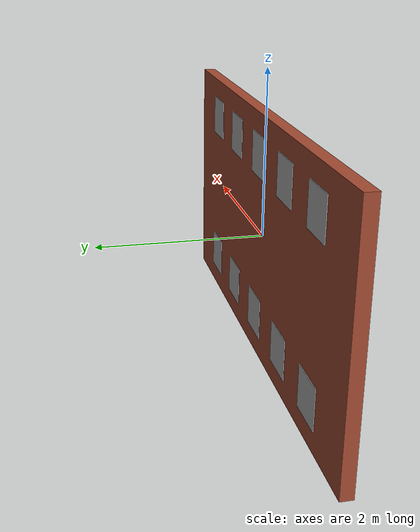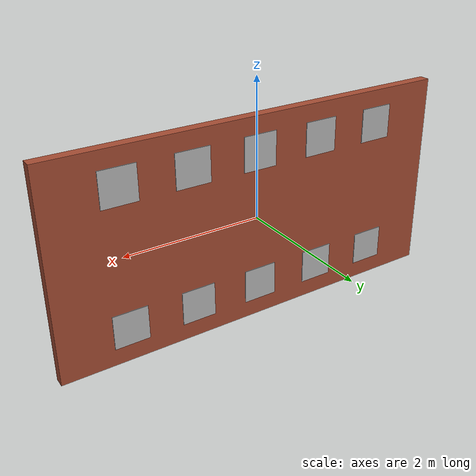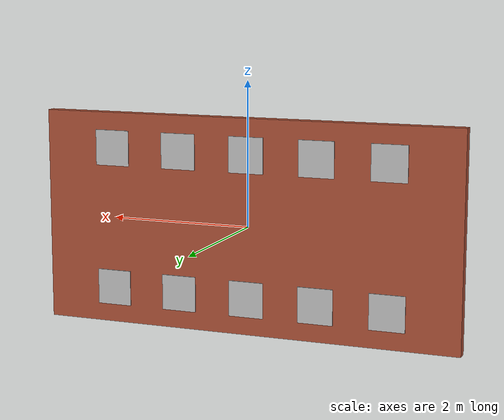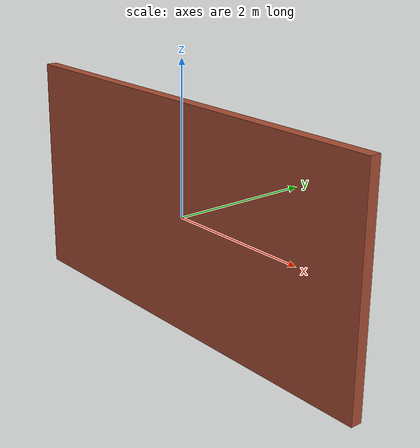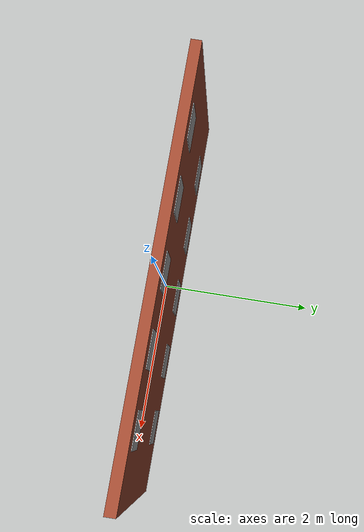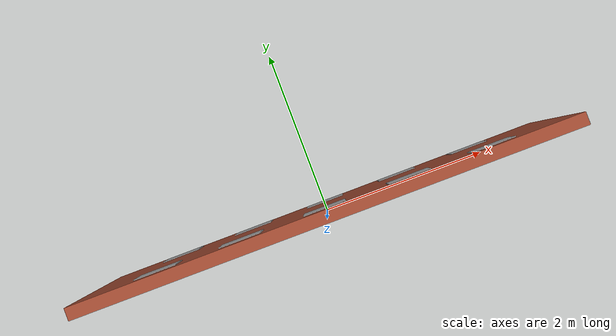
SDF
<?xml version='1.0'?>
<sdf version='1.6'>
  <model name='wall_with_num'>
    <pose frame=''>0 0 0 0 0 0</pose>
    <static>true</static>
    <link name="wall_link">
        <inertial>
          <mass>1.0</mass>
        </inertial>
        <collision name="my_collision">
          <geometry>
            <box>
              <size>6 0.15 3</size>
            </box>
          </geometry>
        </collision>
        <visual name="my_visual">
          <geometry>
            <box>
              <size>6 0.15 3</size>
            </box>
          </geometry>
          <material>
            <script>
              <uri>file://media/materials/scripts/gazebo.material</uri>
              <name>Gazebo/Bricks</name>
            </script>
            <ambient>1 1 1 1</ambient>
          </material>
        </visual>
    </link>

    <link name="ground">
      <pose frame=''>-0.0 0.07 -0.0 0.0 0 0.0</pose>
      <collision name="collision">
          <geometry>
            <box>
               <size>0.5 0.01 0.5</size>
            </box>
          </geometry>
       </collision>
    </link>

    <link name="num_0">
      <pose frame=''>2.0 0.07 1.0 0.0 0 0.0</pose>
      <collision name="collision">
          <geometry>
            <box>
               <size>0.5 0.01 0.5</size>
            </box>
          </geometry>
       </collision>
       <visual name="visual">
          <cast_shadows>false</cast_shadows>
          <geometry>
            <box>
               <size>0.5 0.03 0.5</size>
            </box>
          </geometry>
          <material>
             <script>
                <uri>model://wall_with_num/materials/scripts/numbers.material</uri>
                <uri>model://wall_with_num/materials/textures/</uri>
                <name>Numbers/0</name>
             </script>
          </material>
       </visual>
    </link>

    <link name="num_1">
      <pose frame=''>1.0 0.07 1.0 0.0 0 0.0</pose>
      <collision name="collision">
          <geometry>
            <box>
               <size>0.5 0.01 0.5</size>
            </box>
          </geometry>
       </collision>
       <visual name="visual">
          <cast_shadows>false</cast_shadows>
          <geometry>
            <box>
               <size>0.5 0.03 0.5</size>
            </box>
          </geometry>
          <material>
             <script>
                <uri>model://wall_with_num/materials/scripts/numbers.material</uri>
                <uri>model://wall_with_num/materials/textures/</uri>
                <name>Numbers/1</name>
             </script>
          </material>
       </visual>
    </link>

    <link name="num_2">
      <pose frame=''>0.0 0.07 1.0 0.0 0 0.0</pose>
      <collision name="collision">
          <geometry>
            <box>
               <size>0.5 0.01 0.5</size>
            </box>
          </geometry>
       </collision>
       <visual name="visual">
          <cast_shadows>false</cast_shadows>
          <geometry>
            <box>
               <size>0.5 0.03 0.5</size>
            </box>
          </geometry>
          <material>
             <script>
                <uri>model://wall_with_num/materials/scripts/numbers.material</uri>
                <uri>model://wall_with_num/materials/textures/</uri>
                <name>Numbers/2</name>
             </script>
          </material>
       </visual>
    </link>

    <link name="num_3">
      <pose frame=''>-1.0 0.07 1.0 0.0 0 0.0</pose>
      <collision name="collision">
          <geometry>
            <box>
               <size>0.5 0.01 0.5</size>
            </box>
          </geometry>
       </collision>
       <visual name="visual">
          <cast_shadows>false</cast_shadows>
          <geometry>
            <box>
               <size>0.5 0.03 0.5</size>
            </box>
          </geometry>
          <material>
             <script>
                <uri>model://wall_with_num/materials/scripts/numbers.material</uri>
                <uri>model://wall_with_num/materials/textures/</uri>
                <name>Numbers/3</name>
             </script>
          </material>
       </visual>
    </link>

    <link name="num_4">
      <pose frame=''>-2.0 0.07 1.0 0.0 0 0.0</pose>
      <collision name="collision">
          <geometry>
            <box>
               <size>0.5 0.01 0.5</size>
            </box>
          </geometry>
       </collision>
       <visual name="visual">
          <cast_shadows>false</cast_shadows>
          <geometry>
            <box>
               <size>0.5 0.03 0.5</size>
            </box>
          </geometry>
          <material>
             <script>
                <uri>model://wall_with_num/materials/scripts/numbers.material</uri>
                <uri>model://wall_with_num/materials/textures/</uri>
                <name>Numbers/4</name>
             </script>
          </material>
       </visual>
    </link>

    <link name="num_5">
      <pose frame=''>2.0 0.07 -1.0 0.0 0 0.0</pose>
      <collision name="collision">
          <geometry>
            <box>
               <size>0.5 0.01 0.5</size>
            </box>
          </geometry>
       </collision>
       <visual name="visual">
          <cast_shadows>false</cast_shadows>
          <geometry>
            <box>
               <size>0.5 0.03 0.5</size>
            </box>
          </geometry>
          <material>
             <script>
                <uri>model://wall_with_num/materials/scripts/numbers.material</uri>
                <uri>model://wall_with_num/materials/textures/</uri>
                <name>Numbers/5</name>
             </script>
          </material>
       </visual>
    </link>

    <link name="num_6">
      <pose frame=''>1.0 0.07 -1.0 0.0 0 0.0</pose>
      <collision name="collision">
          <geometry>
            <box>
               <size>0.5 0.01 0.5</size>
            </box>
          </geometry>
       </collision>
       <visual name="visual">
          <cast_shadows>false</cast_shadows>
          <geometry>
            <box>
               <size>0.5 0.03 0.5</size>
            </box>
          </geometry>
          <material>
             <script>
                <uri>model://wall_with_num/materials/scripts/numbers.material</uri>
                <uri>model://wall_with_num/materials/textures/</uri>
                <name>Numbers/6</name>
             </script>
          </material>
       </visual>
    </link>

    <link name="num_7">
      <pose frame=''>0.0 0.07 -1.0 0.0 0 0.0</pose>
      <collision name="collision">
          <geometry>
            <box>
               <size>0.5 0.01 0.5</size>
            </box>
          </geometry>
       </collision>
       <visual name="visual">
          <cast_shadows>false</cast_shadows>
          <geometry>
            <box>
               <size>0.5 0.03 0.5</size>
            </box>
          </geometry>
          <material>
             <script>
                <uri>model://wall_with_num/materials/scripts/numbers.material</uri>
                <uri>model://wall_with_num/materials/textures/</uri>
                <name>Numbers/7</name>
             </script>
          </material>
       </visual>
    </link>

    <link name="num_8">
      <pose frame=''>-1.0 0.07 -1.0 0.0 0 0.0</pose>
      <collision name="collision">
          <geometry>
            <box>
               <size>0.5 0.01 0.5</size>
            </box>
          </geometry>
       </collision>
       <visual name="visual">
          <cast_shadows>false</cast_shadows>
          <geometry>
            <box>
               <size>0.5 0.03 0.5</size>
            </box>
          </geometry>
          <material>
             <script>
                <uri>model://wall_with_num/materials/scripts/numbers.material</uri>
                <uri>model://wall_with_num/materials/textures/</uri>
                <name>Numbers/8</name>
             </script>
          </material>
       </visual>
    </link>

    <link name="num_9">
      <pose frame=''>-2.0 0.07 -1.0 0.0 0 0.0</pose>
      <collision name="collision">
          <geometry>
            <box>
               <size>0.5 0.01 0.5</size>
            </box>
          </geometry>
       </collision>
       <visual name="visual">
          <cast_shadows>false</cast_shadows>
          <geometry>
            <box>
               <size>0.5 0.03 0.5</size>
            </box>
          </geometry>
          <material>
             <script>
                <uri>model://wall_with_num/materials/scripts/numbers.material</uri>
                <uri>model://wall_with_num/materials/textures/</uri>
                <name>Numbers/9</name>
             </script>
          </material>
       </visual>
    </link>

  </model>
</sdf>
